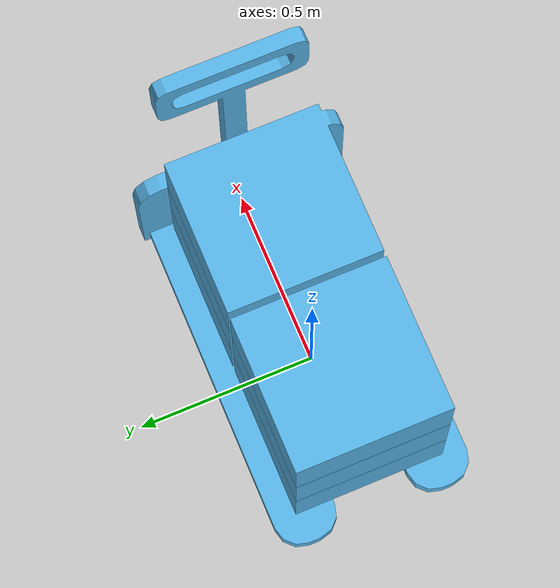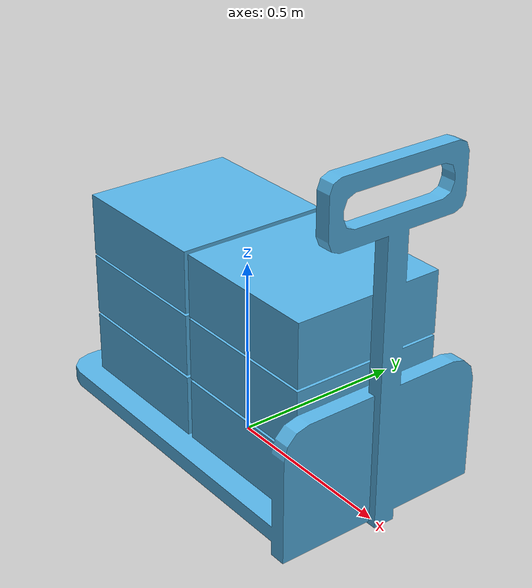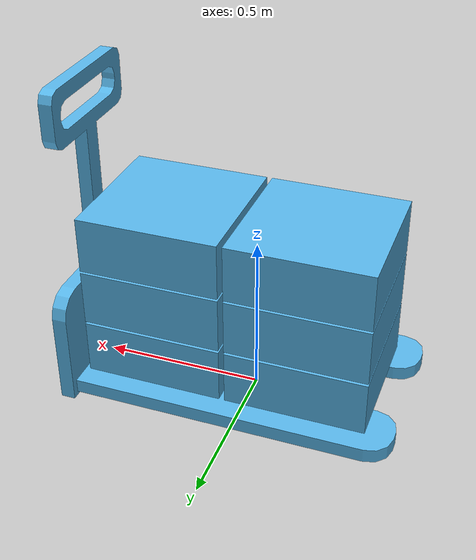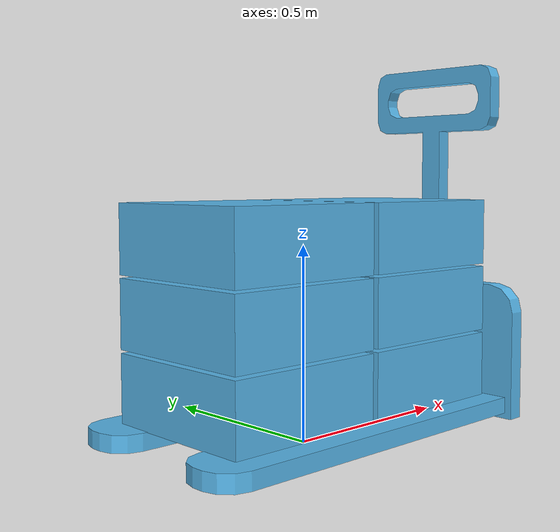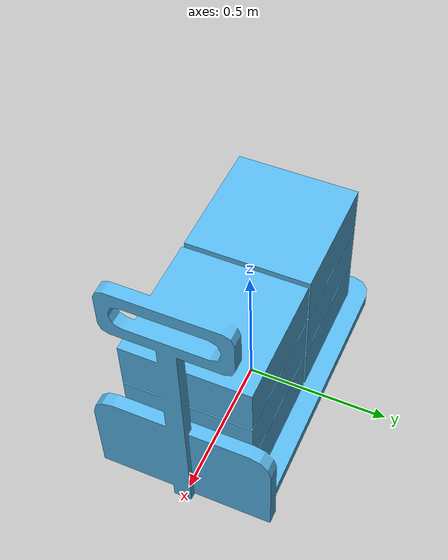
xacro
<?xml version="1.0" ?>
<robot name="pallettruck" xmlns:xacro="http://www.ros.org/wiki/xacro">

  <xacro:arg name="pallettruck_prefix" default="pallettruck_"/>
  <xacro:arg name="pallettruck_parent" default="world_interface"/>

  <xacro:arg name="x" default="0"/>
  <xacro:arg name="y" default="0"/>
  <xacro:arg name="z" default="0"/>
  <xacro:arg name="Y" default="0"/>

  <!-- URDF -->
  <xacro:include filename="$(find casus_support)/urdf/pallettruck/pallettruck.urdf.xacro"/>
  <xacro:pallettruck_urdf pallettruck_prefix="$(arg pallettruck_prefix)" pallettruck_parent="$(arg pallettruck_parent)">
    <origin xyz="$(arg x) $(arg y) $(arg z)" rpy="0 0 $(arg Y)"/>
  </xacro:pallettruck_urdf>

  <!-- Gazebo -->
  <xacro:include filename="$(find casus_support)/urdf/pallettruck/pallettruck.gazebo.xacro"/>
</robot>

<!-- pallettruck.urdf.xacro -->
<robot name="pallettruck_urdf" xmlns:xacro="http://www.ros.org/wiki/xacro">
    <xacro:macro name="pallettruck_urdf" params="pallettruck_parent pallettruck_prefix *origin">

  <joint name="${pallettruck_prefix}joint" type="fixed">
    <xacro:insert_block name="origin" />
    <parent link="${pallettruck_parent}"/>
    <child link="${pallettruck_prefix}origin"/>
  </joint>

    <!-- Links -->
<link name="${pallettruck_parent}"/>
    <link name="${pallettruck_prefix}origin">
      <visual>
        <geometry>
          <mesh filename="package://casus_support/meshes/pallettruck/visual/pallettruck.dae"/>
        </geometry>
      </visual>
      <collision>
        <geometry>
          <mesh filename="package://casus_support/meshes/pallettruck/collision/pallettruck.dae"/>
        </geometry>
      </collision>
      <inertial>
        <inertia ixx="1.0" ixy="0" ixz="0"
                 iyy="1.0" iyz="0"
                 izz="1.0" />
        <mass value="100" />
      </inertial>
    </link>
  </xacro:macro>
</robot>
